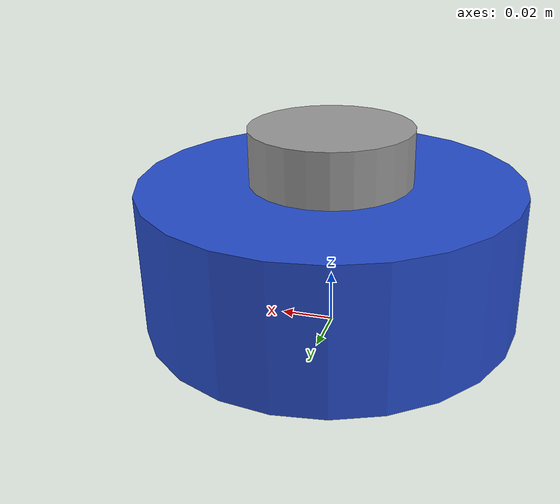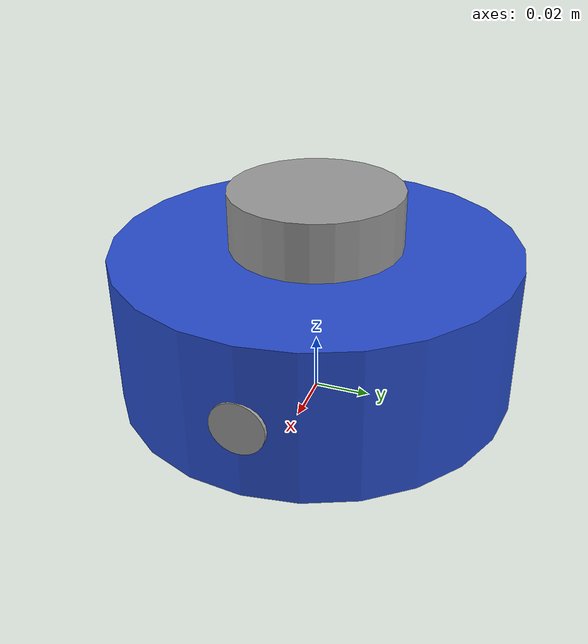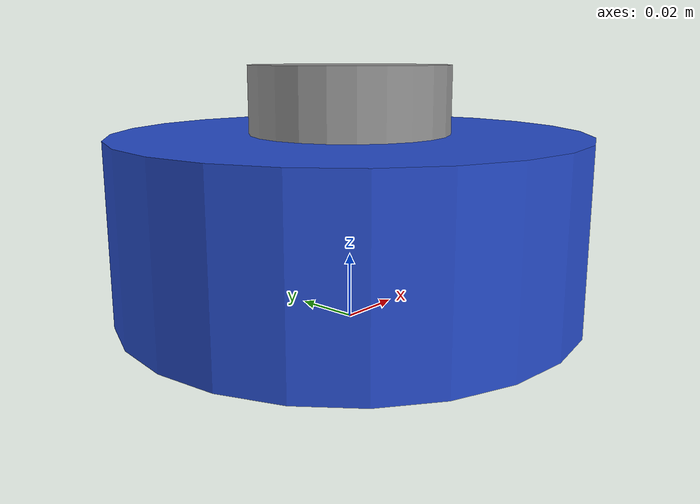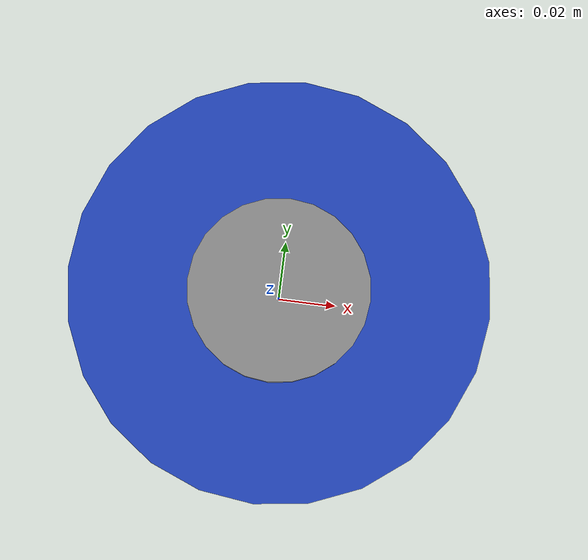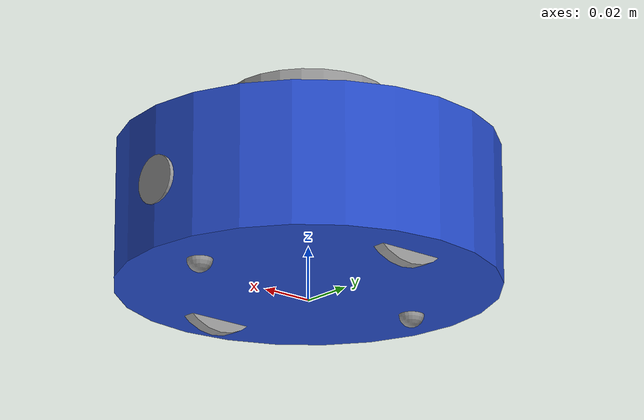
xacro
<?xml version="1.0" ?>
<robot xmlns:xacro="http://www.ros.org/wiki/xacro" >

    <xacro:property name="cylinder_length" value = "0.053" />
    <xacro:property name="cylinder_radius" value = "0.0704" />
    <xacro:property name="wheel_radius" value = "0.021" />
    <xacro:property name="wheel_len" value = "0.005" />

    <link name="base_footprint"/>
    <joint name="base_joint" type="fixed">
    <parent link="base_footprint"/>
    <child link="base_link"/>
    <origin xyz="0 0 0.0047" rpy="0 0 0"/>
  </joint>

    <link name="base_link">
       <visual>
           <geometry>
              <cylinder length="${cylinder_length}" radius="${cylinder_radius}"/>
            </geometry>
            <origin xyz="0 0 0.0265" rpy="0 0 0"/>
            <material name="blue"/>
        </visual>
        <collision>
         <geometry>
              <cylinder length="${cylinder_length}" radius="${cylinder_radius}"/>
         </geometry>
          <origin xyz="0 0 0.0265" rpy="0 0 0"/>
        </collision>
        <inertial>
           <mass value="0.5"/>
           <origin xyz="0 0 0.0265" rpy="0 0 0"/>
           <inertia ixx="0.00114" ixy="0" ixz="0" iyy="0.00114" iyz="0" izz="0.000273"/>
        </inertial>
    </link>

    <!-- Left Wheel -->

  <joint name="left_wheel_joint" type="continuous">
    <parent link="base_link"/>
    <child link="left_wheel"/>
    <origin xyz="0 0.0527 0.0163" rpy="0 0 0"/>
    <axis xyz="0 1 0"/>
  </joint>

  <link name="left_wheel">
      <origin xyz="0 0 0" rpy="0 ${pi /2.0} ${pi /2.0}"/>
      <geometry>
        <cylinder length="${wheel_len}" radius="${wheel_radius}"/>
      </geometry>
    <visual name="left_wheel_visual">
      <origin xyz="0 0 0" rpy="0 ${pi /2.0} ${pi /2.0}"/>
      <geometry>
        <cylinder length="0.005" radius="0.021"/>
      </geometry>
      <material name="grey" />
    </visual>
    <collision>
      <geometry>
        <cylinder length="${wheel_len}" radius="${wheel_radius}"/>
      </geometry>
      <origin xyz="0 0 0" rpy="0 ${pi /2.0} ${pi /2.0}"/>
    </collision>
    <inertial>
      <mass value="0.033"/>
      <origin xyz="0 0 0" rpy="0 ${pi /2.0} ${pi /2.0}"/>
      <inertia ixx="0.00000054" ixy="0" ixz="0" iyy="0.00000054" iyz="0" izz="0.00000016"/>
    </inertial>

  </link>

  <!-- Right Wheel -->

  <joint name="right_wheel_joint" type="continuous">
    <parent link="base_link"/>
    <child link="right_wheel"/>
    <origin xyz="0 -0.0527 0.0163" rpy="0 0 0"/>
    <axis xyz="0 1 0"/>
  </joint>

  <link name="right_wheel">
    <visual name="right_wheel_visual">
      <origin xyz="0 0 0" rpy="0  ${pi /2.0} ${pi /2.0}"/>
      <geometry>
        <cylinder length="${wheel_len}" radius="${wheel_radius}"/>
      </geometry>
      <material name="grey" />
    </visual>
    <collision>
      <geometry>
        <cylinder length="${wheel_len}" radius="${wheel_radius}"/>
      </geometry>
      <origin xyz="0 0 0" rpy="0 ${pi /2.0} ${pi /2.0}"/>
    </collision>
    <inertial>
      <mass value="0.033"/>
      <origin xyz="0 0 0" rpy="0 ${pi /2.0} ${pi /2.0}"/>
      <inertia ixx="0.00000054" ixy="0" ixz="0" iyy="0.00000054" iyz="0" izz="0.00000016"/>
    </inertial>

  </link>

    <link name="Laser_link">
        <visual>
            <geometry>
                <cylinder length="0.02" radius="0.03"/>
            </geometry>
            <origin xyz="0 0 0" rpy="0 0 0 "/>
            <material name="grey" />
        </visual>
        <collision>
          <geometry>
                <cylinder length="0.02" radius="0.03"/>
          </geometry>
            <origin xyz="0 0 0" rpy="0 0 0 "/>
        </collision>
        <inertial>
           <mass value="0.25"/>
           <origin xyz="0 0 0" rpy="0 0 0"/>
           <inertia ixx="0.000025" ixy="0" ixz="0" iyy="0.000025" iyz="0" izz="0.00001125"/>
        </inertial>

    </link>

    <joint name="base_Laser_joint" type="fixed">
          <parent link="base_link" />
          <child link="Laser_link" />
          <origin xyz="0 0 0.063" rpy="0 0 0"/>
    </joint>

    <!-- camera - link -->
    <link name="camera_link">
        <visual>
            <geometry>
                <cylinder length="0.0035" radius="0.009"/>
            </geometry>
            <origin xyz="0 0 0.025" rpy="0 -1.5707  3.14 "/>
            <material name="grey" />
        </visual>
        <collision>
            <geometry>
                <cylinder length="0.0035" radius="0.009"/>
             </geometry>
        </collision>
        <inertial>
          <mass value="1e-5" />
          <origin xyz="0 0 0" rpy="0 0 0" />
          <inertia ixx="4.05e-11" ixy="0" ixz="0" iyy="4.05e-11" iyz="0" izz="4.05e-11" />
        </inertial>
    </link>

    <joint name="base_camera_joint" type="fixed">
          <parent link="base_link" />
          <child link="camera_link" />
          <origin xyz="0.069 0 0" rpy="0 0 0"/>
    </joint>

    <!-- caster wheel -->

    <link name="Front_caster_wheel">
        <visual>
            <geometry>
                <sphere radius=".0047"/>
            </geometry>
            <origin xyz="0 0 0" rpy="0 0 0"/>
            <material name="grey" />
        </visual>
        <collision>
          <geometry>
                <sphere radius=".0047"/>
          </geometry>
            <origin xyz="0 0 0" rpy="0 0 0 "/>
        </collision>
        <inertial>
          <mass value="0.033"/>
          <origin xyz="0 0 0" rpy="0 0 0"/>
          <inertia ixx="0.00000065" ixy="0" ixz="0" iyy="0.00000065" iyz="0" izz="0.00000065"/>
       </inertial>

    </link>

    <joint name="F_caster_joint" type="fixed">
          <parent link="base_link" />
          <child link="Front_caster_wheel" />
          <origin xyz="0.05 0 0" rpy="0 0 0"/>
    </joint>

    <link name="Back_caster_wheel">
        <visual>
            <geometry>
                <sphere radius=".0047"/>
            </geometry>
            <origin xyz="0 0 0" rpy="0  0  0"/>
            <material name="grey" />
        </visual>
        <collision>
          <geometry>
                <sphere radius=".0047"/>
          </geometry>
            <origin xyz="0 0 0" rpy="0 0 0 "/>
        </collision>
        <inertial>
          <mass value="0.033"/>
          <origin xyz="0 0 0" rpy="0 0 0"/>
          <inertia ixx="0.00000065" ixy="0" ixz="0" iyy="0.00000065" iyz="0" izz="0.00000065"/>
       </inertial>
    </link>

    <joint name="B_caster_joint" type="fixed">
          <parent link="base_link" />
          <child link="Back_caster_wheel" />
          <origin xyz="-0.05 0 0" rpy="0 0 0"/>
    </joint>

</robot>
